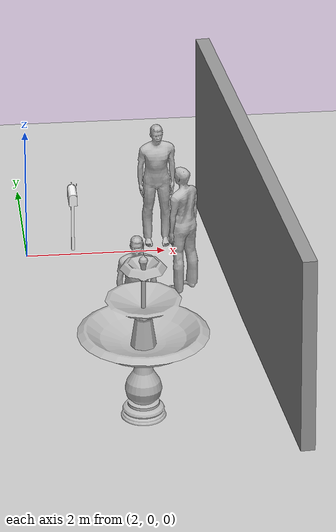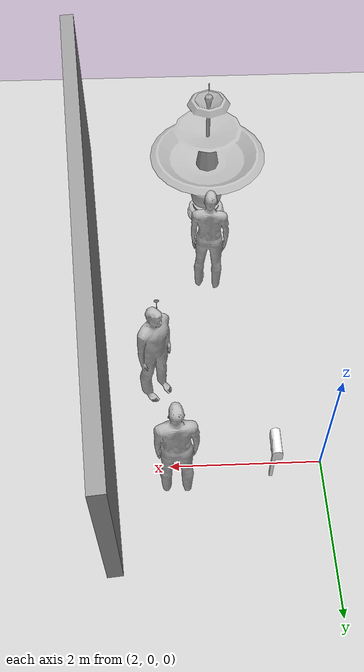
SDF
<sdf version="1.6">
 <world name="default">
  <model name="ground_plane">
   <static>1</static>
   <link name="link">
    <collision name="collision">
     <geometry><plane><normal>0 0 1</normal><size>100 100</size></plane></geometry>
     <surface><friction><ode><mu>100</mu><mu2>50</mu2></ode></friction></surface>
    </collision>
    <visual name="visual">
     <cast_shadows>0</cast_shadows>
     <geometry><plane><normal>0 0 1</normal><size>100 100</size></plane></geometry>
     <material>
      <script><uri>file://media/materials/scripts/gazebo.material</uri><name>Gazebo/Grey</name></script>
     </material>
    </visual>
   </link>
  </model>
  <light name="sun" type="directional">
   <pose>0 0 10 0 -0 0</pose>
   <diffuse>0.8 0.8 0.8 1</diffuse>
   <specular>0.1 0.1 0.1 1</specular>
   <attenuation>
    <range>1000</range>
    <constant>0.9</constant>
    <linear>0.01</linear>
    <quadratic>0.001</quadratic>
   </attenuation>
   <direction>-0.5 0.5 -1</direction>
  </light>
  <plugin name="ros_interface_plugin" filename="librotors_gazebo_ros_interface_plugin.so"/>
  <spherical_coordinates>
   <surface_model>EARTH_WGS84</surface_model>
   <latitude_deg>47.3667</latitude_deg>
   <longitude_deg>8.55</longitude_deg>
   <elevation>500</elevation>
   <heading_deg>0</heading_deg>
  </spherical_coordinates>
  <physics name="default_physics" default="0" type="ode">
   <ode>
    <solver>
     <type>quick</type>
     <iters>1000</iters>
     <sor>1.3</sor>
     <use_dynamic_moi_rescaling>0</use_dynamic_moi_rescaling>
    </solver>
    <constraints>
     <cfm>0</cfm>
     <erp>0.2</erp>
     <contact_max_correcting_vel>100</contact_max_correcting_vel>
     <contact_surface_layer>0.001</contact_surface_layer>
    </constraints>
   </ode>
   <max_step_size>0.01</max_step_size>
   <real_time_factor>1</real_time_factor>
   <real_time_update_rate>100</real_time_update_rate>
  </physics>
  <gravity>0 0 -9.8</gravity>
  <magnetic_field>6e-06 2.3e-05 -4.2e-05</magnetic_field>
  <atmosphere type="adiabatic"/>
  <scene><ambient>0.4 0.4 0.4 1</ambient><background>0.7 0.7 0.7 1</background><shadows>1</shadows></scene>
  <model name="person_standing">
   <link name="link">
    <inertial>
     <pose>0 -0.1 0.95 0 -0 0</pose>
     <mass>80</mass>
     <inertia><ixx>24.88</ixx><ixy>0</ixy><ixz>0</ixz><iyy>25.73</iyy><iyz>0</iyz><izz>2.48</izz></inertia>
    </inertial>
    <collision name="bottom">
     <pose>0 -0.1 0.01 0 -0 0</pose>
     <geometry><box><size>0.5 0.35 0.02</size></box></geometry>
    </collision>
    <collision name="person">
     <pose>0 0 0.02 0.04 -0 0</pose>
     <geometry><mesh><uri>model://person_standing/meshes/standing.dae</uri><scale>1 1 1</scale></mesh></geometry>
    </collision>
    <visual name="visual">
     <pose>0 0 0.02 0.04 -0 0</pose>
     <geometry><mesh><uri>model://person_standing/meshes/standing.dae</uri><scale>1 1 1</scale></mesh></geometry>
    </visual>
   </link>
   <pose>3.90818 0.327806 0 0 -0 0</pose>
  </model>
  <model name="person_standing_0">
   <link name="link">
    <inertial>
     <pose>0 -0.1 0.95 0 -0 0</pose>
     <mass>80</mass>
     <inertia><ixx>24.88</ixx><ixy>0</ixy><ixz>0</ixz><iyy>25.73</iyy><iyz>0</iyz><izz>2.48</izz></inertia>
    </inertial>
    <collision name="bottom">
     <pose>0 -0.1 0.01 0 -0 0</pose>
     <geometry><box><size>0.5 0.35 0.02</size></box></geometry>
    </collision>
    <collision name="person">
     <pose>0 0 0.02 0.04 -0 0</pose>
     <geometry><mesh><uri>model://person_standing/meshes/standing.dae</uri><scale>1 1 1</scale></mesh></geometry>
    </collision>
    <visual name="visual">
     <pose>0 0 0.02 0.04 -0 0</pose>
     <geometry><mesh><uri>model://person_standing/meshes/standing.dae</uri><scale>1 1 1</scale></mesh></geometry>
    </visual>
   </link>
   <pose>4.20793 -1.24559 0 0 0 -2.44841</pose>
  </model>
  <model name="Speed limit">
   <static>1</static>
   <link name="link">
    <collision name="collision">
     <geometry>
      <mesh><scale>1 1 1</scale><uri>model://speed_limit_sign/meshes/speed_limit_sign.dae</uri></mesh>
     </geometry>
    </collision>
    <visual name="visual">
     <geometry>
      <mesh><scale>1 1 1</scale><uri>model://speed_limit_sign/meshes/speed_limit_sign.dae</uri></mesh>
     </geometry>
    </visual>
   </link>
   <pose>4.13062 -2.62149 0 0 -0 0</pose>
  </model>
  <model name="person_standing_1">
   <link name="link">
    <inertial>
     <pose>0 -0.1 0.95 0 -0 0</pose>
     <mass>80</mass>
     <inertia><ixx>24.88</ixx><ixy>0</ixy><ixz>0</ixz><iyy>25.73</iyy><iyz>0</iyz><izz>2.48</izz></inertia>
    </inertial>
    <collision name="bottom">
     <pose>0 -0.1 0.01 0 -0 0</pose>
     <geometry><box><size>0.5 0.35 0.02</size></box></geometry>
    </collision>
    <collision name="person">
     <pose>0 0 0.02 0.04 -0 0</pose>
     <geometry><mesh><uri>model://person_standing/meshes/standing.dae</uri><scale>1 1 1</scale></mesh></geometry>
    </collision>
    <visual name="visual">
     <pose>0 0 0.02 0.04 -0 0</pose>
     <geometry><mesh><uri>model://person_standing/meshes/standing.dae</uri><scale>1 1 1</scale></mesh></geometry>
    </visual>
   </link>
   <pose>3.34006 -3.01946 0 0 0 -0.189032</pose>
  </model>
  <model name="Mailbox">
   <link name="link">
    <collision name="collision">
     <geometry><mesh><uri>model://mailbox/meshes/mailbox.dae</uri><scale>1 1 1</scale></mesh></geometry>
    </collision>
    <visual name="visual">
     <geometry><mesh><uri>model://mailbox/meshes/mailbox.dae</uri><scale>1 1 1</scale></mesh></geometry>
     <material>
      <script>
       <uri>model://mailbox/materials/scripts</uri>
       <uri>model://mailbox/materials/textures</uri>
       <name>Mailbox/Diffuse</name>
      </script>
     </material>
    </visual>
    <inertial>
     <inertia><ixx>1</ixx><ixy>0</ixy><ixz>0</ixz><iyy>1</iyy><iyz>0</iyz><izz>1</izz></inertia>
     <mass>1</mass>
    </inertial>
   </link>
   <pose>2.68108 0.152565 -0.000879 -1.1e-05 1.1e-05 0</pose>
  </model>
  <model name="fountain">
   <static>1</static>
   <link name="link">
    <collision name="collision">
     <geometry><mesh><uri>model://fountain/meshes/fountain.dae</uri><scale>1 1 1</scale></mesh></geometry>
    </collision>
    <visual name="visual">
     <geometry><mesh><uri>model://fountain/meshes/fountain.dae</uri><scale>1 1 1</scale></mesh></geometry>
    </visual>
   </link>
   <pose>3.27113 -4.64244 0 0 -0 0</pose>
  </model>
  <model name="grey_wall">
   <static>1</static>
   <link name="link">
    <pose>0 0 1.4 0 -0 0</pose>
    <collision name="collision"><geometry><box><size>7.5 0.2 2.8</size></box></geometry></collision>
    <visual name="visual">
     <cast_shadows>0</cast_shadows>
     <geometry><box><size>7.5 0.2 2.8</size></box></geometry>
     <material>
      <script>
       <uri>model://grey_wall/materials/scripts</uri>
       <uri>model://grey_wall/materials/textures</uri>
       <name>vrc/grey_wall</name>
      </script>
     </material>
    </visual>
   </link>
   <pose>5.01879 -2.32809 -4e-06 0.003598 0.041866 1.65656</pose>
  </model>
 </world>
</sdf>
